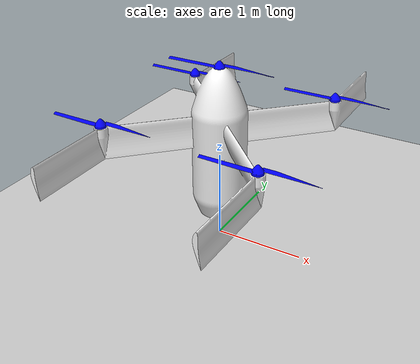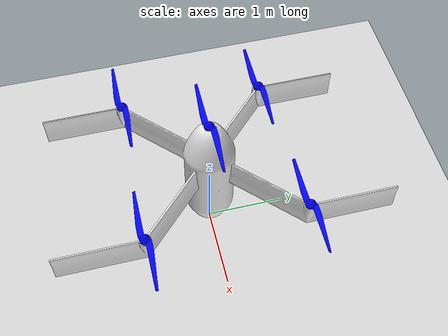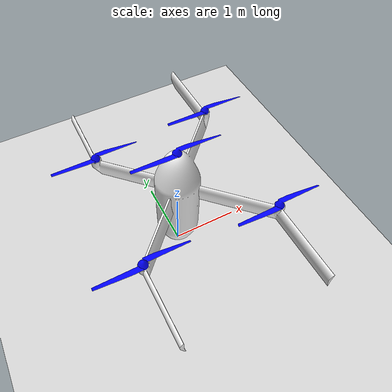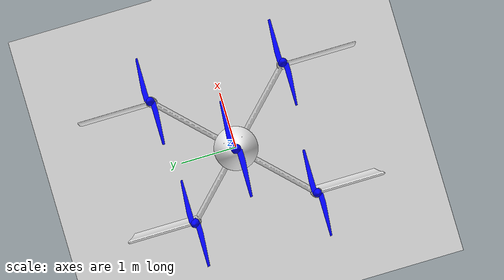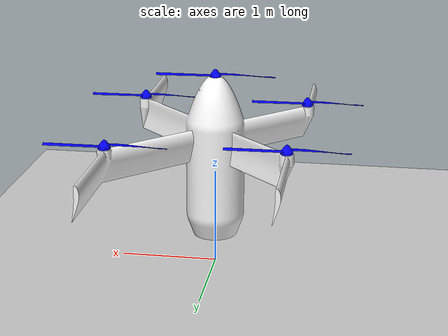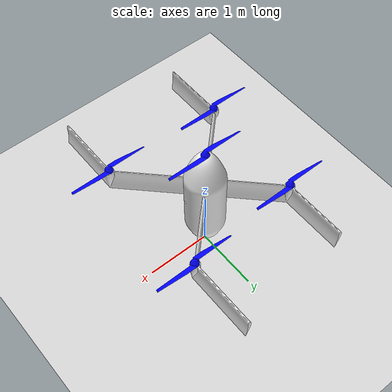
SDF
<?xml version="1.0"?>
<sdf version="1.10">
  <world name="empty">

    <plugin filename="gz-sim-physics-system" name="gz::sim::systems::Physics"/>
    <plugin filename="gz-sim-scene-broadcaster-system" name="gz::sim::systems::SceneBroadcaster"/>

    <gravity>0 0 -9.81</gravity>
    <atmosphere type="adiabatic"/>

    <wind>
      <linear_velocity>5 0 0</linear_velocity>
    </wind>

    <plugin filename="gz-sim-wind-effects-system" name="gz::sim::systems::WindEffects">
      <horizontal>
        <magnitude>
          <time_for_rise>2.0</time_for_rise>
          <sin>
            <amplitude_percent>0.25</amplitude_percent>
            <period>6.0</period>
          </sin>
          <noise>
            <type>gaussian</type>
            <mean>0.0</mean>
            <stddev>0.5</stddev>
          </noise>
        </magnitude>

        <direction>
          <time_for_rise>3.0</time_for_rise>
          <sin>
            <amplitude>0.2</amplitude>
            <period>10.0</period>
          </sin>
          <noise>
            <type>gaussian</type>
            <mean>0.0</mean>
            <stddev>0.05</stddev>
          </noise>
        </direction>
      </horizontal>

      <vertical>
        <time_for_rise>5.0</time_for_rise>
        <noise>
          <type>gaussian</type>
          <mean>0.0</mean>
          <stddev>0.2</stddev>
        </noise>
      </vertical>

      <force_approximation_scaling_factor>
        <when xge="0">1.0</when>
        <when xlt="0">0.3</when>
      </force_approximation_scaling_factor>
    </plugin>

    <light name="sun" type="directional">
      <pose>0 0 200 0 0 0</pose>
      <direction>-0.35 0.15 -1</direction>

      <diffuse>1 1 1 1</diffuse>
      <specular>0.2 0.2 0.2 1</specular>

      <attenuation>
        <range>2000</range>
        <constant>1</constant>
        <linear>0</linear>
        <quadratic>0</quadratic>
      </attenuation>

      <cast_shadows>true</cast_shadows>
    </light>

    <scene>
      <ambient>0.18 0.18 0.18 1</ambient>

      <background>0.60 0.70 0.85 1</background>

      <shadows>true</shadows>

      <fog>
        <type>linear</type>
        <color>0.60 0.70 0.85 1</color>
        <start>250</start>
        <end>1200</end>
      </fog>

      <sky>
        <time>12</time>
        <clouds>true</clouds>
      </sky>

    </scene>

    <spherical_coordinates>
      <surface_model>EARTH_WGS84</surface_model>
      <latitude_deg>37.7749</latitude_deg>
      <longitude_deg>-122.4194</longitude_deg>
      <elevation>0</elevation>
      <heading_deg>0</heading_deg>
    </spherical_coordinates>

    <!-- terrain -->
    <include>
      <uri>https://fuel.gazebosim.org/1.0/openrobotics/models/Ground Plane</uri>
    </include>

    <!-- Hermes -->
    <include>
      <uri>file:///home/santos/dev_ws/src/salvos_gz/models/hermes/model.sdf</uri>
      <name>hermes</name>
      <pose>0 0 0.3 0 0 0</pose>
    </include>

  </world>
</sdf>

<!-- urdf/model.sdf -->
<sdf version='1.11'>
  <model name='hermes'>
    <link name='base_link'>
      <inertial>
        <pose>0 0 0.80000000000000004 0 0 0</pose>
        <mass>1630</mass>
        <inertia>
          <ixx>111.5</ixx>
          <ixy>-9.5407000000000193e-05</ixy>
          <ixz>-0.000113200000002535</ixz>
          <iyy>111.5</iyy>
          <iyz>-0.0031419999999999998</iyz>
          <izz>70.099999999999994</izz>
        </inertia>
      </inertial>
      <collision name='base_link_fixed_joint_lump__frame_collision'>
        <pose>0 0 0.80000000000000004 0 -1.5707963267948966 0</pose>
        <geometry>
          <mesh>
            <scale>1 1 1</scale>
            <uri>file:///home/santos/dev_ws/src/salvos_gz/models/hermes/meshes/hermes_mesh_scaled.stl</uri>
          </mesh>
        </geometry>
      </collision>
      <visual name='base_link_fixed_joint_lump__frame_visual'>
        <pose>0 0 0.80000000000000004 0 -1.5707963267948966 0</pose>
        <geometry>
          <mesh>
            <scale>1 1 1</scale>
            <uri>file:///home/santos/dev_ws/src/salvos_gz/models/hermes/meshes/hermes_mesh_scaled.stl</uri>
          </mesh>
        </geometry>
        <material>
          <diffuse>1 1 1 1</diffuse>
          <ambient>1 1 1 1</ambient>
        </material>
      </visual>
    </link>
    <joint name='fl_rotor_joint' type='revolute'>
      <pose relative_to='base_link'>-0.81010181980132401 0.81000000000000005 1.2998350143343129 -3.1415899999998351 -0.00040734641020577061 -5.4046517934472906e-10</pose>
      <parent>base_link</parent>
      <child>fl_rotor</child>
      <axis>
        <xyz>0 0 1</xyz>
        <limit>
          <effort>0.10000000000000001</effort>
          <velocity>100</velocity>
          <lower>-inf</lower>
          <upper>inf</upper>
        </limit>
        <dynamics>
          <damping>0.01</damping>
          <friction>0.001</friction>
          <spring_reference>0</spring_reference>
          <spring_stiffness>0</spring_stiffness>
        </dynamics>
      </axis>
    </joint>
    <link name='fl_rotor'>
      <pose relative_to='fl_rotor_joint'>0 0 0 0 0 0</pose>
      <inertial>
        <pose>0 0 0 0 0 0</pose>
        <mass>5</mass>
        <inertia>
          <ixx>43</ixx>
          <ixy>-0.048599999999999997</ixy>
          <ixz>-0.048599999999999997</ixz>
          <iyy>34.329999999999998</iyy>
          <iyz>6.0945e-05</iyz>
          <izz>34.329999999999998</izz>
        </inertia>
      </inertial>
      <collision name='fl_rotor_collision'>
        <pose>0 0 0 0 0 0</pose>
        <geometry>
          <mesh>
            <scale>1 1 1</scale>
            <uri>file:///home/santos/dev_ws/src/salvos_gz/models/hermes/meshes/propeller_scaled.stl</uri>
          </mesh>
        </geometry>
      </collision>
      <visual name='fl_rotor_visual'>
        <pose>0 0 0 0 0 0</pose>
        <geometry>
          <mesh>
            <scale>1 1 1</scale>
            <uri>file:///home/santos/dev_ws/src/salvos_gz/models/hermes/meshes/propeller_scaled.stl</uri>
          </mesh>
        </geometry>
        <material>
          <diffuse>0 0 1 1</diffuse>
          <ambient>0 0 1 1</ambient>
        </material>
      </visual>
    </link>
    <joint name='fr_rotor_joint' type='revolute'>
      <pose relative_to='base_link'>-0.88010181834942691 -0.88 1.2998207572100551 -3.1415899999998351 -0.00040734641020577061 -5.4046517934472906e-10</pose>
      <parent>base_link</parent>
      <child>fr_rotor</child>
      <axis>
        <xyz>0 0 1</xyz>
        <limit>
          <effort>0.10000000000000001</effort>
          <velocity>100</velocity>
          <lower>-inf</lower>
          <upper>inf</upper>
        </limit>
        <dynamics>
          <damping>0.01</damping>
          <friction>0.001</friction>
          <spring_reference>0</spring_reference>
          <spring_stiffness>0</spring_stiffness>
        </dynamics>
      </axis>
    </joint>
    <link name='fr_rotor'>
      <pose relative_to='fr_rotor_joint'>0 0 0 0 0 0</pose>
      <inertial>
        <pose>0 0 0 0 0 0</pose>
        <mass>5</mass>
        <inertia>
          <ixx>43</ixx>
          <ixy>-0.048599999999999997</ixy>
          <ixz>-0.048599999999999997</ixz>
          <iyy>34.329999999999998</iyy>
          <iyz>6.0945e-05</iyz>
          <izz>34.329999999999998</izz>
        </inertia>
      </inertial>
      <collision name='fr_rotor_collision'>
        <pose>0 0 0 0 0 0</pose>
        <geometry>
          <mesh>
            <scale>1 1 1</scale>
            <uri>file:///home/santos/dev_ws/src/salvos_gz/models/hermes/meshes/propeller_scaled.stl</uri>
          </mesh>
        </geometry>
      </collision>
      <visual name='fr_rotor_visual'>
        <pose>0 0 0 0 0 0</pose>
        <geometry>
          <mesh>
            <scale>1 1 1</scale>
            <uri>file:///home/santos/dev_ws/src/salvos_gz/models/hermes/meshes/propeller_scaled.stl</uri>
          </mesh>
        </geometry>
        <material>
          <diffuse>0 0 1 1</diffuse>
          <ambient>0 0 1 1</ambient>
        </material>
      </visual>
    </link>
    <joint name='nose_rotor_joint' type='revolute'>
      <pose relative_to='base_link'>-0.00020367320369518721 0 1.799999979258613 -3.1415899999998351 -0.00040734641020577061 -5.4046517934472906e-10</pose>
      <parent>base_link</parent>
      <child>nose_rotor</child>
      <axis>
        <xyz>0 0 1</xyz>
        <limit>
          <effort>0.10000000000000001</effort>
          <velocity>100</velocity>
          <lower>-inf</lower>
          <upper>inf</upper>
        </limit>
        <dynamics>
          <damping>0.01</damping>
          <friction>0.001</friction>
          <spring_reference>0</spring_reference>
          <spring_stiffness>0</spring_stiffness>
        </dynamics>
      </axis>
    </joint>
    <link name='nose_rotor'>
      <pose relative_to='nose_rotor_joint'>0 0 0 0 0 0</pose>
      <inertial>
        <pose>0 0 0 0 0 0</pose>
        <mass>5</mass>
        <inertia>
          <ixx>43</ixx>
          <ixy>-0.048599999999999997</ixy>
          <ixz>-0.048599999999999997</ixz>
          <iyy>34.329999999999998</iyy>
          <iyz>6.0945e-05</iyz>
          <izz>34.329999999999998</izz>
        </inertia>
      </inertial>
      <collision name='nose_rotor_collision'>
        <pose>0 0 0 0 0 0</pose>
        <geometry>
          <mesh>
            <scale>1 1 1</scale>
            <uri>file:///home/santos/dev_ws/src/salvos_gz/models/hermes/meshes/propeller_scaled.stl</uri>
          </mesh>
        </geometry>
      </collision>
      <visual name='nose_rotor_visual'>
        <pose>0 0 0 0 0 0</pose>
        <geometry>
          <mesh>
            <scale>1 1 1</scale>
            <uri>file:///home/santos/dev_ws/src/salvos_gz/models/hermes/meshes/propeller_scaled.stl</uri>
          </mesh>
        </geometry>
        <material>
          <diffuse>0 0 1 1</diffuse>
          <ambient>0 0 1 1</ambient>
        </material>
      </visual>
    </link>
    <joint name='rl_rotor_joint' type='revolute'>
      <pose relative_to='base_link'>0.92989814410866256 -0.93000000000000005 1.3001894057087431 -3.1415899999998351 -0.00040734641020577061 -5.4046517934472906e-10</pose>
      <parent>base_link</parent>
      <child>rl_rotor</child>
      <axis>
        <xyz>0 0 1</xyz>
        <limit>
          <effort>0.10000000000000001</effort>
          <velocity>100</velocity>
          <lower>-inf</lower>
          <upper>inf</upper>
        </limit>
        <dynamics>
          <damping>0.01</damping>
          <friction>0.001</friction>
          <spring_reference>0</spring_reference>
          <spring_stiffness>0</spring_stiffness>
        </dynamics>
      </axis>
    </joint>
    <link name='rl_rotor'>
      <pose relative_to='rl_rotor_joint'>0 0 0 0 0 0</pose>
      <inertial>
        <pose>0 0 0 0 0 0</pose>
        <mass>5</mass>
        <inertia>
          <ixx>43</ixx>
          <ixy>-0.048599999999999997</ixy>
          <ixz>-0.048599999999999997</ixz>
          <iyy>34.329999999999998</iyy>
          <iyz>6.0945e-05</iyz>
          <izz>34.329999999999998</izz>
        </inertia>
      </inertial>
      <collision name='rl_rotor_collision'>
        <pose>0 0 0 0 0 0</pose>
        <geometry>
          <mesh>
            <scale>1 1 1</scale>
            <uri>file:///home/santos/dev_ws/src/salvos_gz/models/hermes/meshes/propeller_scaled.stl</uri>
          </mesh>
        </geometry>
      </collision>
      <visual name='rl_rotor_visual'>
        <pose>0 0 0 0 0 0</pose>
        <geometry>
          <mesh>
            <scale>1 1 1</scale>
            <uri>file:///home/santos/dev_ws/src/salvos_gz/models/hermes/meshes/propeller_scaled.stl</uri>
          </mesh>
        </geometry>
        <material>
          <diffuse>0 0 1 1</diffuse>
          <ambient>0 0 1 1</ambient>
        </material>
      </visual>
    </link>
    <joint name='rr_rotor_joint' type='revolute'>
      <pose relative_to='base_link'>0.92989814410866256 0.93000000000000005 1.3001894057087431 -3.1415899999998351 -0.00040734641020577061 -5.4046517934472906e-10</pose>
      <parent>base_link</parent>
      <child>rr_rotor</child>
      <axis>
        <xyz>0 0 1</xyz>
        <limit>
          <effort>0.10000000000000001</effort>
          <velocity>100</velocity>
          <lower>-inf</lower>
          <upper>inf</upper>
        </limit>
        <dynamics>
          <damping>0.01</damping>
          <friction>0.001</friction>
          <spring_reference>0</spring_reference>
          <spring_stiffness>0</spring_stiffness>
        </dynamics>
      </axis>
    </joint>
    <link name='rr_rotor'>
      <pose relative_to='rr_rotor_joint'>0 0 0 0 0 0</pose>
      <inertial>
        <pose>0 0 0 0 0 0</pose>
        <mass>5</mass>
        <inertia>
          <ixx>43</ixx>
          <ixy>-0.048599999999999997</ixy>
          <ixz>-0.048599999999999997</ixz>
          <iyy>34.329999999999998</iyy>
          <iyz>6.0945e-05</iyz>
          <izz>34.329999999999998</izz>
        </inertia>
      </inertial>
      <collision name='rr_rotor_collision'>
        <pose>0 0 0 0 0 0</pose>
        <geometry>
          <mesh>
            <scale>1 1 1</scale>
            <uri>file:///home/santos/dev_ws/src/salvos_gz/models/hermes/meshes/propeller_scaled.stl</uri>
          </mesh>
        </geometry>
      </collision>
      <visual name='rr_rotor_visual'>
        <pose>0 0 0 0 0 0</pose>
        <geometry>
          <mesh>
            <scale>1 1 1</scale>
            <uri>file:///home/santos/dev_ws/src/salvos_gz/models/hermes/meshes/propeller_scaled.stl</uri>
          </mesh>
        </geometry>
        <material>
          <diffuse>0 0 1 1</diffuse>
          <ambient>0 0 1 1</ambient>
        </material>
      </visual>
    </link>
    <plugin name='gz::sim::systems::JointController' filename='libgz-sim-joint-controller-system.so'>
      <joint_name>nose_rotor_joint</joint_name>
      <topic>/model/hermes/joint/nose_rotor_joint/cmd_vel</topic>
    </plugin>
    <plugin name='gz::sim::systems::JointController' filename='libgz-sim-joint-controller-system.so'>
      <joint_name>fl_rotor_joint</joint_name>
      <topic>/model/hermes/joint/fl_rotor_joint/cmd_vel</topic>
    </plugin>
    <plugin name='gz::sim::systems::JointController' filename='libgz-sim-joint-controller-system.so'>
      <joint_name>fr_rotor_joint</joint_name>
      <topic>/model/hermes/joint/fr_rotor_joint/cmd_vel</topic>
    </plugin>
    <plugin name='gz::sim::systems::JointController' filename='libgz-sim-joint-controller-system.so'>
      <joint_name>rl_rotor_joint</joint_name>
      <topic>/model/hermes/joint/rl_rotor_joint/cmd_vel</topic>
    </plugin>
    <plugin name='gz::sim::systems::JointController' filename='libgz-sim-joint-controller-system.so'>
      <joint_name>rr_rotor_joint</joint_name>
      <topic>/model/hermes/joint/rr_rotor_joint/cmd_vel</topic>
    </plugin>
    <frame name='dummy_joint' attached_to='base_link'>
      <pose>0 0 0.80000000000000004 3.1415926535897931 -1.5705926535909005 3.1415926535897931</pose>
    </frame>
    <frame name='frame' attached_to='dummy_joint'>
      <pose>0 0 0 0 0 0</pose>
    </frame>
  </model>
</sdf>
